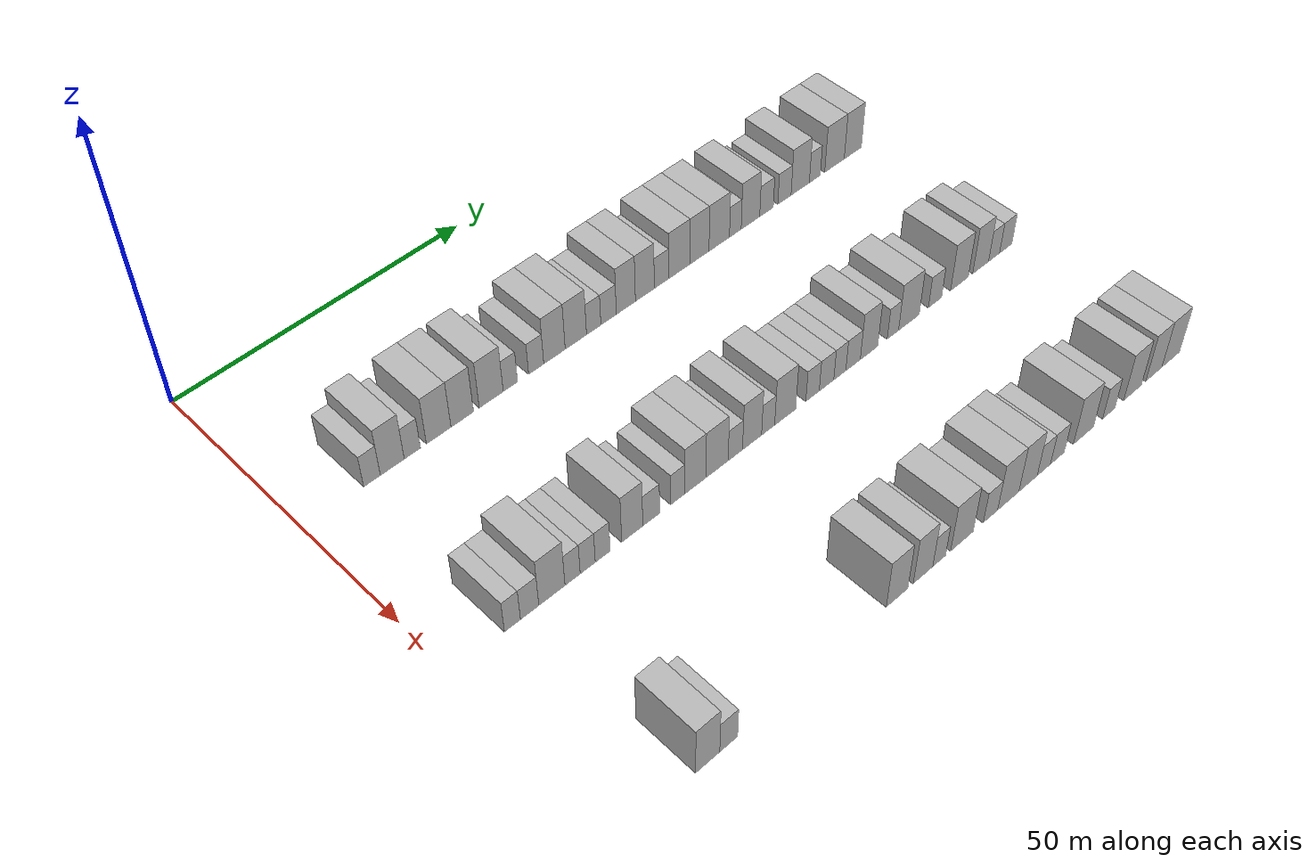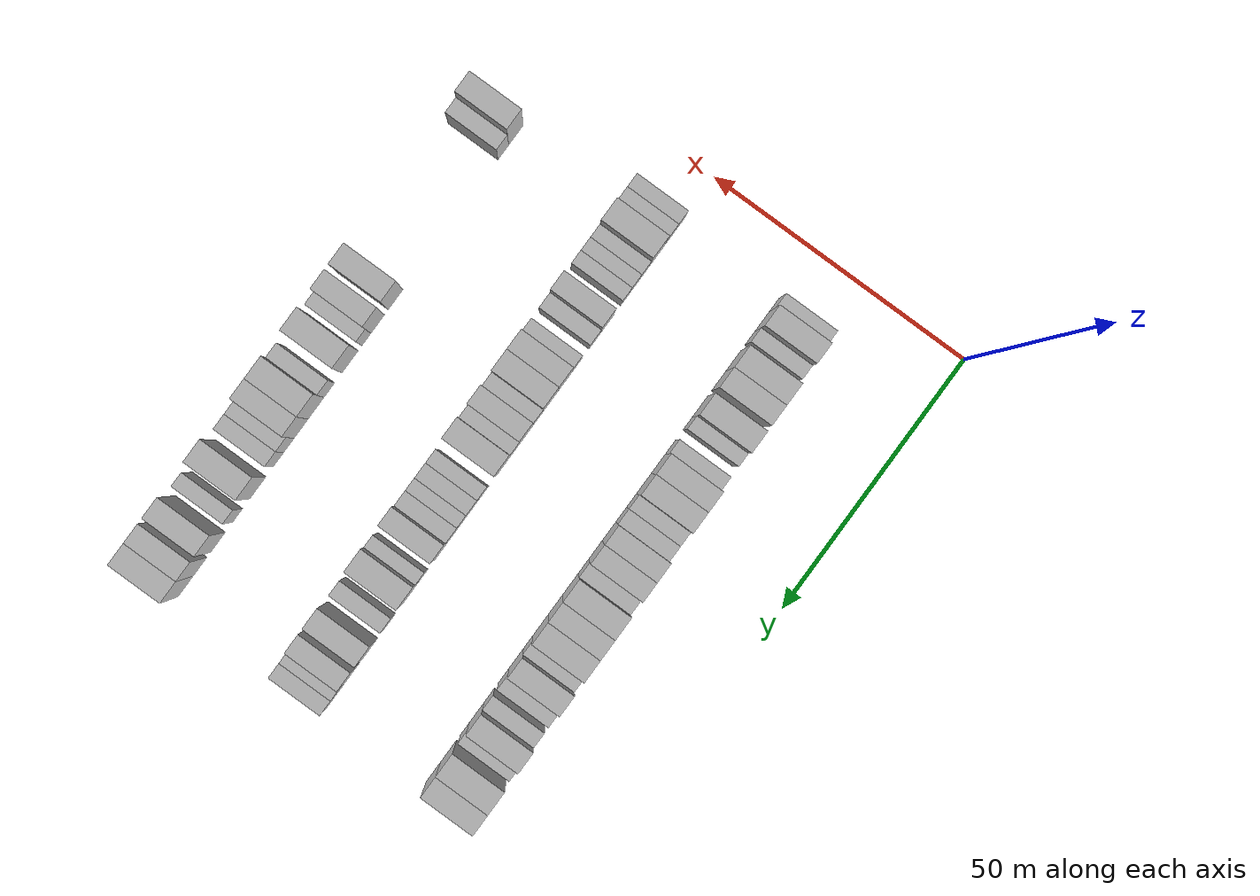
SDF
<sdf version="1.6">
 <world name="default">
  <model name="building_69">
   <static>1</static>
   <pose>25.0000 11.1300 0 0.000000 0.000000 0.000000</pose>
   <link name="link">
    <pose>0 0 3.00 0 0 0</pose>
    <collision name="collision"><geometry><box><size>10.0000 2.7293 6.0000</size></box></geometry></collision>
    <visual name="visual">
     <cast_shadows>0</cast_shadows>
     <geometry><box><size>10.0000 2.7293 6.0000</size></box></geometry>
     <material>
      <script>
       <uri>model://HANNAS_wall/materials/scripts</uri>
       <uri>model://HANNAS_wall/materials/textures</uri>
       <name>vrc/HANNAS_wall</name>
      </script>
     </material>
    </visual>
   </link>
  </model>
  <model name="building_70">
   <static>1</static>
   <pose>25.0000 14.4818 0 0.000000 0.000000 0.000000</pose>
   <link name="link">
    <pose>0 0 4.50 0 0 0</pose>
    <collision name="collision"><geometry><box><size>10.0000 3.9744 9.0000</size></box></geometry></collision>
    <visual name="visual">
     <cast_shadows>0</cast_shadows>
     <geometry><box><size>10.0000 3.9744 9.0000</size></box></geometry>
     <material>
      <script>
       <uri>model://HANNAS_wall/materials/scripts</uri>
       <uri>model://HANNAS_wall/materials/textures</uri>
       <name>vrc/HANNAS_wall</name>
      </script>
     </material>
    </visual>
   </link>
  </model>
  <model name="building_71">
   <static>1</static>
   <pose>25.0000 17.8340 0 0.000000 0.000000 0.000000</pose>
   <link name="link">
    <pose>0 0 3.00 0 0 0</pose>
    <collision name="collision"><geometry><box><size>10.0000 2.7299 6.0000</size></box></geometry></collision>
    <visual name="visual">
     <cast_shadows>0</cast_shadows>
     <geometry><box><size>10.0000 2.7299 6.0000</size></box></geometry>
     <material>
      <script>
       <uri>model://HANNAS_wall/materials/scripts</uri>
       <uri>model://HANNAS_wall/materials/textures</uri>
       <name>vrc/HANNAS_wall</name>
      </script>
     </material>
    </visual>
   </link>
  </model>
  <model name="building_72">
   <static>1</static>
   <pose>25.0000 22.2994 0 0.000000 0.000000 0.000000</pose>
   <link name="link">
    <pose>0 0 4.50 0 0 0</pose>
    <collision name="collision"><geometry><box><size>10.0000 4.2010 9.0000</size></box></geometry></collision>
    <visual name="visual">
     <cast_shadows>0</cast_shadows>
     <geometry><box><size>10.0000 4.2010 9.0000</size></box></geometry>
     <material>
      <script>
       <uri>model://HANNAS_wall/materials/scripts</uri>
       <uri>model://HANNAS_wall/materials/textures</uri>
       <name>vrc/HANNAS_wall</name>
      </script>
     </material>
    </visual>
   </link>
  </model>
  <model name="building_73">
   <static>1</static>
   <pose>25.0000 26.3598 0 0.000000 0.000000 0.000000</pose>
   <link name="link">
    <pose>0 0 4.50 0 0 0</pose>
    <collision name="collision"><geometry><box><size>10.0000 3.9196 9.0000</size></box></geometry></collision>
    <visual name="visual">
     <cast_shadows>0</cast_shadows>
     <geometry><box><size>10.0000 3.9196 9.0000</size></box></geometry>
     <material>
      <script>
       <uri>model://HANNAS_wall/materials/scripts</uri>
       <uri>model://HANNAS_wall/materials/textures</uri>
       <name>vrc/HANNAS_wall</name>
      </script>
     </material>
    </visual>
   </link>
  </model>
  <model name="building_74">
   <static>1</static>
   <pose>25.0000 31.4423 0 0.000000 0.000000 0.000000</pose>
   <link name="link">
    <pose>0 0 4.50 0 0 0</pose>
    <collision name="collision"><geometry><box><size>10.0000 4.2455 9.0000</size></box></geometry></collision>
    <visual name="visual">
     <cast_shadows>0</cast_shadows>
     <geometry><box><size>10.0000 4.2455 9.0000</size></box></geometry>
     <material>
      <script>
       <uri>model://HANNAS_wall/materials/scripts</uri>
       <uri>model://HANNAS_wall/materials/textures</uri>
       <name>vrc/HANNAS_wall</name>
      </script>
     </material>
    </visual>
   </link>
  </model>
  <model name="building_75">
   <static>1</static>
   <pose>25.0000 34.8534 0 0.000000 0.000000 0.000000</pose>
   <link name="link">
    <pose>0 0 3.00 0 0 0</pose>
    <collision name="collision"><geometry><box><size>10.0000 2.5768 6.0000</size></box></geometry></collision>
    <visual name="visual">
     <cast_shadows>0</cast_shadows>
     <geometry><box><size>10.0000 2.5768 6.0000</size></box></geometry>
     <material>
      <script>
       <uri>model://HANNAS_wall/materials/scripts</uri>
       <uri>model://HANNAS_wall/materials/textures</uri>
       <name>vrc/HANNAS_wall</name>
      </script>
     </material>
    </visual>
   </link>
  </model>
  <model name="building_76">
   <static>1</static>
   <pose>25.0000 39.5230 0 0.000000 0.000000 0.000000</pose>
   <link name="link">
    <pose>0 0 3.00 0 0 0</pose>
    <collision name="collision"><geometry><box><size>10.0000 2.7624 6.0000</size></box></geometry></collision>
    <visual name="visual">
     <cast_shadows>0</cast_shadows>
     <geometry><box><size>10.0000 2.7624 6.0000</size></box></geometry>
     <material>
      <script>
       <uri>model://HANNAS_wall/materials/scripts</uri>
       <uri>model://HANNAS_wall/materials/textures</uri>
       <name>vrc/HANNAS_wall</name>
      </script>
     </material>
    </visual>
   </link>
  </model>
  <model name="building_77">
   <static>1</static>
   <pose>25.0000 42.8875 0 0.000000 0.000000 0.000000</pose>
   <link name="link">
    <pose>0 0 4.50 0 0 0</pose>
    <collision name="collision"><geometry><box><size>10.0000 3.9665 9.0000</size></box></geometry></collision>
    <visual name="visual">
     <cast_shadows>0</cast_shadows>
     <geometry><box><size>10.0000 3.9665 9.0000</size></box></geometry>
     <material>
      <script>
       <uri>model://HANNAS_wall/materials/scripts</uri>
       <uri>model://HANNAS_wall/materials/textures</uri>
       <name>vrc/HANNAS_wall</name>
      </script>
     </material>
    </visual>
   </link>
  </model>
  <model name="building_78">
   <static>1</static>
   <pose>25.0000 46.8766 0 0.000000 0.000000 0.000000</pose>
   <link name="link">
    <pose>0 0 4.50 0 0 0</pose>
    <collision name="collision"><geometry><box><size>10.0000 4.0118 9.0000</size></box></geometry></collision>
    <visual name="visual">
     <cast_shadows>0</cast_shadows>
     <geometry><box><size>10.0000 4.0118 9.0000</size></box></geometry>
     <material>
      <script>
       <uri>model://HANNAS_wall/materials/scripts</uri>
       <uri>model://HANNAS_wall/materials/textures</uri>
       <name>vrc/HANNAS_wall</name>
      </script>
     </material>
    </visual>
   </link>
  </model>
  <model name="building_79">
   <static>1</static>
   <pose>25.0000 50.2475 0 0.000000 0.000000 0.000000</pose>
   <link name="link">
    <pose>0 0 3.00 0 0 0</pose>
    <collision name="collision"><geometry><box><size>10.0000 2.7299 6.0000</size></box></geometry></collision>
    <visual name="visual">
     <cast_shadows>0</cast_shadows>
     <geometry><box><size>10.0000 2.7299 6.0000</size></box></geometry>
     <material>
      <script>
       <uri>model://HANNAS_wall/materials/scripts</uri>
       <uri>model://HANNAS_wall/materials/textures</uri>
       <name>vrc/HANNAS_wall</name>
      </script>
     </material>
    </visual>
   </link>
  </model>
  <model name="building_80">
   <static>1</static>
   <pose>25.0000 53.1015 0 0.000000 0.000000 0.000000</pose>
   <link name="link">
    <pose>0 0 3.00 0 0 0</pose>
    <collision name="collision"><geometry><box><size>10.0000 2.9782 6.0000</size></box></geometry></collision>
    <visual name="visual">
     <cast_shadows>0</cast_shadows>
     <geometry><box><size>10.0000 2.9782 6.0000</size></box></geometry>
     <material>
      <script>
       <uri>model://HANNAS_wall/materials/scripts</uri>
       <uri>model://HANNAS_wall/materials/textures</uri>
       <name>vrc/HANNAS_wall</name>
      </script>
     </material>
    </visual>
   </link>
  </model>
  <model name="building_81">
   <static>1</static>
   <pose>25.0000 56.4469 0 0.000000 0.000000 0.000000</pose>
   <link name="link">
    <pose>0 0 4.50 0 0 0</pose>
    <collision name="collision"><geometry><box><size>10.0000 3.7125 9.0000</size></box></geometry></collision>
    <visual name="visual">
     <cast_shadows>0</cast_shadows>
     <geometry><box><size>10.0000 3.7125 9.0000</size></box></geometry>
     <material>
      <script>
       <uri>model://HANNAS_wall/materials/scripts</uri>
       <uri>model://HANNAS_wall/materials/textures</uri>
       <name>vrc/HANNAS_wall</name>
      </script>
     </material>
    </visual>
   </link>
  </model>
  <model name="building_82">
   <static>1</static>
   <pose>25.0000 60.1686 0 0.000000 0.000000 0.000000</pose>
   <link name="link">
    <pose>0 0 4.50 0 0 0</pose>
    <collision name="collision"><geometry><box><size>10.0000 3.7308 9.0000</size></box></geometry></collision>
    <visual name="visual">
     <cast_shadows>0</cast_shadows>
     <geometry><box><size>10.0000 3.7308 9.0000</size></box></geometry>
     <material>
      <script>
       <uri>model://HANNAS_wall/materials/scripts</uri>
       <uri>model://HANNAS_wall/materials/textures</uri>
       <name>vrc/HANNAS_wall</name>
      </script>
     </material>
    </visual>
   </link>
  </model>
  <model name="building_83">
   <static>1</static>
   <pose>25.0000 63.4710 0 0.000000 0.000000 0.000000</pose>
   <link name="link">
    <pose>0 0 3.00 0 0 0</pose>
    <collision name="collision"><geometry><box><size>10.0000 2.8741 6.0000</size></box></geometry></collision>
    <visual name="visual">
     <cast_shadows>0</cast_shadows>
     <geometry><box><size>10.0000 2.8741 6.0000</size></box></geometry>
     <material>
      <script>
       <uri>model://HANNAS_wall/materials/scripts</uri>
       <uri>model://HANNAS_wall/materials/textures</uri>
       <name>vrc/HANNAS_wall</name>
      </script>
     </material>
    </visual>
   </link>
  </model>
  <model name="building_84">
   <static>1</static>
   <pose>25.0000 67.0806 0 0.000000 0.000000 0.000000</pose>
   <link name="link">
    <pose>0 0 4.50 0 0 0</pose>
    <collision name="collision"><geometry><box><size>10.0000 4.3451 9.0000</size></box></geometry></collision>
    <visual name="visual">
     <cast_shadows>0</cast_shadows>
     <geometry><box><size>10.0000 4.3451 9.0000</size></box></geometry>
     <material>
      <script>
       <uri>model://HANNAS_wall/materials/scripts</uri>
       <uri>model://HANNAS_wall/materials/textures</uri>
       <name>vrc/HANNAS_wall</name>
      </script>
     </material>
    </visual>
   </link>
  </model>
  <model name="building_85">
   <static>1</static>
   <pose>25.0000 71.1845 0 0.000000 0.000000 0.000000</pose>
   <link name="link">
    <pose>0 0 4.50 0 0 0</pose>
    <collision name="collision"><geometry><box><size>10.0000 3.8626 9.0000</size></box></geometry></collision>
    <visual name="visual">
     <cast_shadows>0</cast_shadows>
     <geometry><box><size>10.0000 3.8626 9.0000</size></box></geometry>
     <material>
      <script>
       <uri>model://HANNAS_wall/materials/scripts</uri>
       <uri>model://HANNAS_wall/materials/textures</uri>
       <name>vrc/HANNAS_wall</name>
      </script>
     </material>
    </visual>
   </link>
  </model>
  <model name="building_86">
   <static>1</static>
   <pose>25.0000 75.2449 0 0.000000 0.000000 0.000000</pose>
   <link name="link">
    <pose>0 0 4.50 0 0 0</pose>
    <collision name="collision"><geometry><box><size>10.0000 4.2584 9.0000</size></box></geometry></collision>
    <visual name="visual">
     <cast_shadows>0</cast_shadows>
     <geometry><box><size>10.0000 4.2584 9.0000</size></box></geometry>
     <material>
      <script>
       <uri>model://HANNAS_wall/materials/scripts</uri>
       <uri>model://HANNAS_wall/materials/textures</uri>
       <name>vrc/HANNAS_wall</name>
      </script>
     </material>
    </visual>
   </link>
  </model>
  <model name="building_87">
   <static>1</static>
   <pose>25.0000 78.6102 0 0.000000 0.000000 0.000000</pose>
   <link name="link">
    <pose>0 0 3.00 0 0 0</pose>
    <collision name="collision"><geometry><box><size>10.0000 2.4722 6.0000</size></box></geometry></collision>
    <visual name="visual">
     <cast_shadows>0</cast_shadows>
     <geometry><box><size>10.0000 2.4722 6.0000</size></box></geometry>
     <material>
      <script>
       <uri>model://HANNAS_wall/materials/scripts</uri>
       <uri>model://HANNAS_wall/materials/textures</uri>
       <name>vrc/HANNAS_wall</name>
      </script>
     </material>
    </visual>
   </link>
  </model>
  <model name="building_88">
   <static>1</static>
   <pose>25.0000 81.8206 0 0.000000 0.000000 0.000000</pose>
   <link name="link">
    <pose>0 0 4.50 0 0 0</pose>
    <collision name="collision"><geometry><box><size>10.0000 3.9486 9.0000</size></box></geometry></collision>
    <visual name="visual">
     <cast_shadows>0</cast_shadows>
     <geometry><box><size>10.0000 3.9486 9.0000</size></box></geometry>
     <material>
      <script>
       <uri>model://HANNAS_wall/materials/scripts</uri>
       <uri>model://HANNAS_wall/materials/textures</uri>
       <name>vrc/HANNAS_wall</name>
      </script>
     </material>
    </visual>
   </link>
  </model>
  <model name="building_89">
   <static>1</static>
   <pose>25.0000 85.2588 0 0.000000 0.000000 0.000000</pose>
   <link name="link">
    <pose>0 0 3.00 0 0 0</pose>
    <collision name="collision"><geometry><box><size>10.0000 2.9277 6.0000</size></box></geometry></collision>
    <visual name="visual">
     <cast_shadows>0</cast_shadows>
     <geometry><box><size>10.0000 2.9277 6.0000</size></box></geometry>
     <material>
      <script>
       <uri>model://HANNAS_wall/materials/scripts</uri>
       <uri>model://HANNAS_wall/materials/textures</uri>
       <name>vrc/HANNAS_wall</name>
      </script>
     </material>
    </visual>
   </link>
  </model>
  <model name="building_90">
   <static>1</static>
   <pose>25.0000 89.1623 0 0.000000 0.000000 0.000000</pose>
   <link name="link">
    <pose>0 0 3.00 0 0 0</pose>
    <collision name="collision"><geometry><box><size>10.0000 2.8794 6.0000</size></box></geometry></collision>
    <visual name="visual">
     <cast_shadows>0</cast_shadows>
     <geometry><box><size>10.0000 2.8794 6.0000</size></box></geometry>
     <material>
      <script>
       <uri>model://HANNAS_wall/materials/scripts</uri>
       <uri>model://HANNAS_wall/materials/textures</uri>
       <name>vrc/HANNAS_wall</name>
      </script>
     </material>
    </visual>
   </link>
  </model>
  <model name="building_91">
   <static>1</static>
   <pose>25.0000 92.6256 0 0.000000 0.000000 0.000000</pose>
   <link name="link">
    <pose>0 0 4.50 0 0 0</pose>
    <collision name="collision"><geometry><box><size>10.0000 4.0471 9.0000</size></box></geometry></collision>
    <visual name="visual">
     <cast_shadows>0</cast_shadows>
     <geometry><box><size>10.0000 4.0471 9.0000</size></box></geometry>
     <material>
      <script>
       <uri>model://HANNAS_wall/materials/scripts</uri>
       <uri>model://HANNAS_wall/materials/textures</uri>
       <name>vrc/HANNAS_wall</name>
      </script>
     </material>
    </visual>
   </link>
  </model>
  <model name="building_92">
   <static>1</static>
   <pose>25.0000 95.8721 0 0.000000 0.000000 0.000000</pose>
   <link name="link">
    <pose>0 0 3.00 0 0 0</pose>
    <collision name="collision"><geometry><box><size>10.0000 2.4459 6.0000</size></box></geometry></collision>
    <visual name="visual">
     <cast_shadows>0</cast_shadows>
     <geometry><box><size>10.0000 2.4459 6.0000</size></box></geometry>
     <material>
      <script>
       <uri>model://HANNAS_wall/materials/scripts</uri>
       <uri>model://HANNAS_wall/materials/textures</uri>
       <name>vrc/HANNAS_wall</name>
      </script>
     </material>
    </visual>
   </link>
  </model>
  <model name="building_93">
   <static>1</static>
   <pose>25.0000 100.3099 0 0.000000 0.000000 0.000000</pose>
   <link name="link">
    <pose>0 0 4.50 0 0 0</pose>
    <collision name="collision"><geometry><box><size>10.0000 4.4297 9.0000</size></box></geometry></collision>
    <visual name="visual">
     <cast_shadows>0</cast_shadows>
     <geometry><box><size>10.0000 4.4297 9.0000</size></box></geometry>
     <material>
      <script>
       <uri>model://HANNAS_wall/materials/scripts</uri>
       <uri>model://HANNAS_wall/materials/textures</uri>
       <name>vrc/HANNAS_wall</name>
      </script>
     </material>
    </visual>
   </link>
  </model>
  <model name="building_94">
   <static>1</static>
   <pose>25.0000 104.4895 0 0.000000 0.000000 0.000000</pose>
   <link name="link">
    <pose>0 0 4.50 0 0 0</pose>
    <collision name="collision"><geometry><box><size>10.0000 3.9295 9.0000</size></box></geometry></collision>
    <visual name="visual">
     <cast_shadows>0</cast_shadows>
     <geometry><box><size>10.0000 3.9295 9.0000</size></box></geometry>
     <material>
      <script>
       <uri>model://HANNAS_wall/materials/scripts</uri>
       <uri>model://HANNAS_wall/materials/textures</uri>
       <name>vrc/HANNAS_wall</name>
      </script>
     </material>
    </visual>
   </link>
  </model>
  <model name="building_207">
   <static>1</static>
   <pose>55.0000 9.6672 0 0.000000 0.000000 0.000000</pose>
   <link name="link">
    <pose>0 0 3.00 0 0 0</pose>
    <collision name="collision"><geometry><box><size>10.0000 2.5757 6.0000</size></box></geometry></collision>
    <visual name="visual">
     <cast_shadows>0</cast_shadows>
     <geometry><box><size>10.0000 2.5757 6.0000</size></box></geometry>
     <material>
      <script>
       <uri>model://HANNAS_wall/materials/scripts</uri>
       <uri>model://HANNAS_wall/materials/textures</uri>
       <name>vrc/HANNAS_wall</name>
      </script>
     </material>
    </visual>
   </link>
  </model>
  <model name="building_208">
   <static>1</static>
   <pose>55.0000 12.4416 0 0.000000 0.000000 0.000000</pose>
   <link name="link">
    <pose>0 0 3.00 0 0 0</pose>
    <collision name="collision"><geometry><box><size>10.0000 2.9729 6.0000</size></box></geometry></collision>
    <visual name="visual">
     <cast_shadows>0</cast_shadows>
     <geometry><box><size>10.0000 2.9729 6.0000</size></box></geometry>
     <material>
      <script>
       <uri>model://HANNAS_wall/materials/scripts</uri>
       <uri>model://HANNAS_wall/materials/textures</uri>
       <name>vrc/HANNAS_wall</name>
      </script>
     </material>
    </visual>
   </link>
  </model>
  <model name="building_209">
   <static>1</static>
   <pose>55.0000 16.0848 0 0.000000 0.000000 0.000000</pose>
   <link name="link">
    <pose>0 0 4.50 0 0 0</pose>
    <collision name="collision"><geometry><box><size>10.0000 4.3135 9.0000</size></box></geometry></collision>
    <visual name="visual">
     <cast_shadows>0</cast_shadows>
     <geometry><box><size>10.0000 4.3135 9.0000</size></box></geometry>
     <material>
      <script>
       <uri>model://HANNAS_wall/materials/scripts</uri>
       <uri>model://HANNAS_wall/materials/textures</uri>
       <name>vrc/HANNAS_wall</name>
      </script>
     </material>
    </visual>
   </link>
  </model>
  <model name="building_210">
   <static>1</static>
   <pose>55.0000 19.5131 0 0.000000 0.000000 0.000000</pose>
   <link name="link">
    <pose>0 0 3.00 0 0 0</pose>
    <collision name="collision"><geometry><box><size>10.0000 2.5431 6.0000</size></box></geometry></collision>
    <visual name="visual">
     <cast_shadows>0</cast_shadows>
     <geometry><box><size>10.0000 2.5431 6.0000</size></box></geometry>
     <material>
      <script>
       <uri>model://HANNAS_wall/materials/scripts</uri>
       <uri>model://HANNAS_wall/materials/textures</uri>
       <name>vrc/HANNAS_wall</name>
      </script>
     </material>
    </visual>
   </link>
  </model>
  <model name="building_211">
   <static>1</static>
   <pose>55.0000 22.0585 0 0.000000 0.000000 0.000000</pose>
   <link name="link">
    <pose>0 0 3.00 0 0 0</pose>
    <collision name="collision"><geometry><box><size>10.0000 2.5477 6.0000</size></box></geometry></collision>
    <visual name="visual">
     <cast_shadows>0</cast_shadows>
     <geometry><box><size>10.0000 2.5477 6.0000</size></box></geometry>
     <material>
      <script>
       <uri>model://HANNAS_wall/materials/scripts</uri>
       <uri>model://HANNAS_wall/materials/textures</uri>
       <name>vrc/HANNAS_wall</name>
      </script>
     </material>
    </visual>
   </link>
  </model>
  <model name="building_212">
   <static>1</static>
   <pose>55.0000 24.5988 0 0.000000 0.000000 0.000000</pose>
   <link name="link">
    <pose>0 0 3.00 0 0 0</pose>
    <collision name="collision"><geometry><box><size>10.0000 2.5330 6.0000</size></box></geometry></collision>
    <visual name="visual">
     <cast_shadows>0</cast_shadows>
     <geometry><box><size>10.0000 2.5330 6.0000</size></box></geometry>
     <material>
      <script>
       <uri>model://HANNAS_wall/materials/scripts</uri>
       <uri>model://HANNAS_wall/materials/textures</uri>
       <name>vrc/HANNAS_wall</name>
      </script>
     </material>
    </visual>
   </link>
  </model>
  <model name="building_213">
   <static>1</static>
   <pose>55.0000 29.7055 0 0.000000 0.000000 0.000000</pose>
   <link name="link">
    <pose>0 0 4.50 0 0 0</pose>
    <collision name="collision"><geometry><box><size>10.0000 3.6804 9.0000</size></box></geometry></collision>
    <visual name="visual">
     <cast_shadows>0</cast_shadows>
     <geometry><box><size>10.0000 3.6804 9.0000</size></box></geometry>
     <material>
      <script>
       <uri>model://HANNAS_wall/materials/scripts</uri>
       <uri>model://HANNAS_wall/materials/textures</uri>
       <name>vrc/HANNAS_wall</name>
      </script>
     </material>
    </visual>
   </link>
  </model>
  <model name="building_214">
   <static>1</static>
   <pose>55.0000 33.0315 0 0.000000 0.000000 0.000000</pose>
   <link name="link">
    <pose>0 0 3.00 0 0 0</pose>
    <collision name="collision"><geometry><box><size>10.0000 2.9715 6.0000</size></box></geometry></collision>
    <visual name="visual">
     <cast_shadows>0</cast_shadows>
     <geometry><box><size>10.0000 2.9715 6.0000</size></box></geometry>
     <material>
      <script>
       <uri>model://HANNAS_wall/materials/scripts</uri>
       <uri>model://HANNAS_wall/materials/textures</uri>
       <name>vrc/HANNAS_wall</name>
      </script>
     </material>
    </visual>
   </link>
  </model>
  <model name="building_215">
   <static>1</static>
   <pose>55.0000 37.7977 0 0.000000 0.000000 0.000000</pose>
   <link name="link">
    <pose>0 0 3.00 0 0 0</pose>
    <collision name="collision"><geometry><box><size>10.0000 2.5610 6.0000</size></box></geometry></collision>
    <visual name="visual">
     <cast_shadows>0</cast_shadows>
     <geometry><box><size>10.0000 2.5610 6.0000</size></box></geometry>
     <material>
      <script>
       <uri>model://HANNAS_wall/materials/scripts</uri>
       <uri>model://HANNAS_wall/materials/textures</uri>
       <name>vrc/HANNAS_wall</name>
      </script>
     </material>
    </visual>
   </link>
  </model>
  <model name="building_216">
   <static>1</static>
   <pose>55.0000 40.9803 0 0.000000 0.000000 0.000000</pose>
   <link name="link">
    <pose>0 0 4.50 0 0 0</pose>
    <collision name="collision"><geometry><box><size>10.0000 3.8041 9.0000</size></box></geometry></collision>
    <visual name="visual">
     <cast_shadows>0</cast_shadows>
     <geometry><box><size>10.0000 3.8041 9.0000</size></box></geometry>
     <material>
      <script>
       <uri>model://HANNAS_wall/materials/scripts</uri>
       <uri>model://HANNAS_wall/materials/textures</uri>
       <name>vrc/HANNAS_wall</name>
      </script>
     </material>
    </visual>
   </link>
  </model>
  <model name="building_217">
   <static>1</static>
   <pose>55.0000 44.9478 0 0.000000 0.000000 0.000000</pose>
   <link name="link">
    <pose>0 0 4.50 0 0 0</pose>
    <collision name="collision"><geometry><box><size>10.0000 4.1309 9.0000</size></box></geometry></collision>
    <visual name="visual">
     <cast_shadows>0</cast_shadows>
     <geometry><box><size>10.0000 4.1309 9.0000</size></box></geometry>
     <material>
      <script>
       <uri>model://HANNAS_wall/materials/scripts</uri>
       <uri>model://HANNAS_wall/materials/textures</uri>
       <name>vrc/HANNAS_wall</name>
      </script>
     </material>
    </visual>
   </link>
  </model>
  <model name="building_218">
   <static>1</static>
   <pose>55.0000 48.3630 0 0.000000 0.000000 0.000000</pose>
   <link name="link">
    <pose>0 0 3.00 0 0 0</pose>
    <collision name="collision"><geometry><box><size>10.0000 2.6995 6.0000</size></box></geometry></collision>
    <visual name="visual">
     <cast_shadows>0</cast_shadows>
     <geometry><box><size>10.0000 2.6995 6.0000</size></box></geometry>
     <material>
      <script>
       <uri>model://HANNAS_wall/materials/scripts</uri>
       <uri>model://HANNAS_wall/materials/textures</uri>
       <name>vrc/HANNAS_wall</name>
      </script>
     </material>
    </visual>
   </link>
  </model>
  <model name="building_219">
   <static>1</static>
   <pose>55.0000 51.5292 0 0.000000 0.000000 0.000000</pose>
   <link name="link">
    <pose>0 0 4.50 0 0 0</pose>
    <collision name="collision"><geometry><box><size>10.0000 3.6328 9.0000</size></box></geometry></collision>
    <visual name="visual">
     <cast_shadows>0</cast_shadows>
     <geometry><box><size>10.0000 3.6328 9.0000</size></box></geometry>
     <material>
      <script>
       <uri>model://HANNAS_wall/materials/scripts</uri>
       <uri>model://HANNAS_wall/materials/textures</uri>
       <name>vrc/HANNAS_wall</name>
      </script>
     </material>
    </visual>
   </link>
  </model>
  <model name="building_220">
   <static>1</static>
   <pose>55.0000 54.6069 0 0.000000 0.000000 0.000000</pose>
   <link name="link">
    <pose>0 0 3.00 0 0 0</pose>
    <collision name="collision"><geometry><box><size>10.0000 2.5227 6.0000</size></box></geometry></collision>
    <visual name="visual">
     <cast_shadows>0</cast_shadows>
     <geometry><box><size>10.0000 2.5227 6.0000</size></box></geometry>
     <material>
      <script>
       <uri>model://HANNAS_wall/materials/scripts</uri>
       <uri>model://HANNAS_wall/materials/textures</uri>
       <name>vrc/HANNAS_wall</name>
      </script>
     </material>
    </visual>
   </link>
  </model>
  <model name="building_221">
   <static>1</static>
   <pose>55.0000 57.9199 0 0.000000 0.000000 0.000000</pose>
   <link name="link">
    <pose>0 0 4.50 0 0 0</pose>
    <collision name="collision"><geometry><box><size>10.0000 4.1034 9.0000</size></box></geometry></collision>
    <visual name="visual">
     <cast_shadows>0</cast_shadows>
     <geometry><box><size>10.0000 4.1034 9.0000</size></box></geometry>
     <material>
      <script>
       <uri>model://HANNAS_wall/materials/scripts</uri>
       <uri>model://HANNAS_wall/materials/textures</uri>
       <name>vrc/HANNAS_wall</name>
      </script>
     </material>
    </visual>
   </link>
  </model>
  <model name="building_222">
   <static>1</static>
   <pose>55.0000 63.3047 0 0.000000 0.000000 0.000000</pose>
   <link name="link">
    <pose>0 0 3.00 0 0 0</pose>
    <collision name="collision"><geometry><box><size>10.0000 2.6662 6.0000</size></box></geometry></collision>
    <visual name="visual">
     <cast_shadows>0</cast_shadows>
     <geometry><box><size>10.0000 2.6662 6.0000</size></box></geometry>
     <material>
      <script>
       <uri>model://HANNAS_wall/materials/scripts</uri>
       <uri>model://HANNAS_wall/materials/textures</uri>
       <name>vrc/HANNAS_wall</name>
      </script>
     </material>
    </visual>
   </link>
  </model>
  <model name="building_223">
   <static>1</static>
   <pose>55.0000 66.1019 0 0.000000 0.000000 0.000000</pose>
   <link name="link">
    <pose>0 0 3.00 0 0 0</pose>
    <collision name="collision"><geometry><box><size>10.0000 2.9282 6.0000</size></box></geometry></collision>
    <visual name="visual">
     <cast_shadows>0</cast_shadows>
     <geometry><box><size>10.0000 2.9282 6.0000</size></box></geometry>
     <material>
      <script>
       <uri>model://HANNAS_wall/materials/scripts</uri>
       <uri>model://HANNAS_wall/materials/textures</uri>
       <name>vrc/HANNAS_wall</name>
      </script>
     </material>
    </visual>
   </link>
  </model>
  <model name="building_224">
   <static>1</static>
   <pose>55.0000 68.7865 0 0.000000 0.000000 0.000000</pose>
   <link name="link">
    <pose>0 0 3.00 0 0 0</pose>
    <collision name="collision"><geometry><box><size>10.0000 2.4410 6.0000</size></box></geometry></collision>
    <visual name="visual">
     <cast_shadows>0</cast_shadows>
     <geometry><box><size>10.0000 2.4410 6.0000</size></box></geometry>
     <material>
      <script>
       <uri>model://HANNAS_wall/materials/scripts</uri>
       <uri>model://HANNAS_wall/materials/textures</uri>
       <name>vrc/HANNAS_wall</name>
      </script>
     </material>
    </visual>
   </link>
  </model>
  <model name="building_225">
   <static>1</static>
   <pose>55.0000 71.5010 0 0.000000 0.000000 0.000000</pose>
   <link name="link">
    <pose>0 0 3.00 0 0 0</pose>
    <collision name="collision"><geometry><box><size>10.0000 2.9880 6.0000</size></box></geometry></collision>
    <visual name="visual">
     <cast_shadows>0</cast_shadows>
     <geometry><box><size>10.0000 2.9880 6.0000</size></box></geometry>
     <material>
      <script>
       <uri>model://HANNAS_wall/materials/scripts</uri>
       <uri>model://HANNAS_wall/materials/textures</uri>
       <name>vrc/HANNAS_wall</name>
      </script>
     </material>
    </visual>
   </link>
  </model>
  <model name="building_226">
   <static>1</static>
   <pose>55.0000 74.8074 0 0.000000 0.000000 0.000000</pose>
   <link name="link">
    <pose>0 0 4.50 0 0 0</pose>
    <collision name="collision"><geometry><box><size>10.0000 3.6248 9.0000</size></box></geometry></collision>
    <visual name="visual">
     <cast_shadows>0</cast_shadows>
     <geometry><box><size>10.0000 3.6248 9.0000</size></box></geometry>
     <material>
      <script>
       <uri>model://HANNAS_wall/materials/scripts</uri>
       <uri>model://HANNAS_wall/materials/textures</uri>
       <name>vrc/HANNAS_wall</name>
      </script>
     </material>
    </visual>
   </link>
  </model>
  <model name="building_227">
   <static>1</static>
   <pose>55.0000 79.8282 0 0.000000 0.000000 0.000000</pose>
   <link name="link">
    <pose>0 0 3.00 0 0 0</pose>
    <collision name="collision"><geometry><box><size>10.0000 2.4167 6.0000</size></box></geometry></collision>
    <visual name="visual">
     <cast_shadows>0</cast_shadows>
     <geometry><box><size>10.0000 2.4167 6.0000</size></box></geometry>
     <material>
      <script>
       <uri>model://HANNAS_wall/materials/scripts</uri>
       <uri>model://HANNAS_wall/materials/textures</uri>
       <name>vrc/HANNAS_wall</name>
      </script>
     </material>
    </visual>
   </link>
  </model>
  <model name="building_228">
   <static>1</static>
   <pose>55.0000 83.2558 0 0.000000 0.000000 0.000000</pose>
   <link name="link">
    <pose>0 0 4.50 0 0 0</pose>
    <collision name="collision"><geometry><box><size>10.0000 4.4387 9.0000</size></box></geometry></collision>
    <visual name="visual">
     <cast_shadows>0</cast_shadows>
     <geometry><box><size>10.0000 4.4387 9.0000</size></box></geometry>
     <material>
      <script>
       <uri>model://HANNAS_wall/materials/scripts</uri>
       <uri>model://HANNAS_wall/materials/textures</uri>
       <name>vrc/HANNAS_wall</name>
      </script>
     </material>
    </visual>
   </link>
  </model>
  <model name="building_229">
   <static>1</static>
   <pose>55.0000 88.9210 0 0.000000 0.000000 0.000000</pose>
   <link name="link">
    <pose>0 0 3.00 0 0 0</pose>
    <collision name="collision"><geometry><box><size>10.0000 2.8916 6.0000</size></box></geometry></collision>
    <visual name="visual">
     <cast_shadows>0</cast_shadows>
     <geometry><box><size>10.0000 2.8916 6.0000</size></box></geometry>
     <material>
      <script>
       <uri>model://HANNAS_wall/materials/scripts</uri>
       <uri>model://HANNAS_wall/materials/textures</uri>
       <name>vrc/HANNAS_wall</name>
      </script>
     </material>
    </visual>
   </link>
  </model>
  <model name="building_230">
   <static>1</static>
   <pose>55.0000 94.3499 0 0.000000 0.000000 0.000000</pose>
   <link name="link">
    <pose>0 0 4.50 0 0 0</pose>
    <collision name="collision"><geometry><box><size>10.0000 3.9662 9.0000</size></box></geometry></collision>
    <visual name="visual">
     <cast_shadows>0</cast_shadows>
     <geometry><box><size>10.0000 3.9662 9.0000</size></box></geometry>
     <material>
      <script>
       <uri>model://HANNAS_wall/materials/scripts</uri>
       <uri>model://HANNAS_wall/materials/textures</uri>
       <name>vrc/HANNAS_wall</name>
      </script>
     </material>
    </visual>
   </link>
  </model>
  <model name="building_231">
   <static>1</static>
   <pose>55.0000 99.1384 0 0.000000 0.000000 0.000000</pose>
   <link name="link">
    <pose>0 0 4.50 0 0 0</pose>
    <collision name="collision"><geometry><box><size>10.0000 3.6108 9.0000</size></box></geometry></collision>
    <visual name="visual">
     <cast_shadows>0</cast_shadows>
     <geometry><box><size>10.0000 3.6108 9.0000</size></box></geometry>
     <material>
      <script>
       <uri>model://HANNAS_wall/materials/scripts</uri>
       <uri>model://HANNAS_wall/materials/textures</uri>
       <name>vrc/HANNAS_wall</name>
      </script>
     </material>
    </visual>
   </link>
  </model>
  <model name="building_232">
   <static>1</static>
   <pose>55.0000 102.2079 0 0.000000 0.000000 0.000000</pose>
   <link name="link">
    <pose>0 0 3.00 0 0 0</pose>
    <collision name="collision"><geometry><box><size>10.0000 2.5282 6.0000</size></box></geometry></collision>
    <visual name="visual">
     <cast_shadows>0</cast_shadows>
     <geometry><box><size>10.0000 2.5282 6.0000</size></box></geometry>
     <material>
      <script>
       <uri>model://HANNAS_wall/materials/scripts</uri>
       <uri>model://HANNAS_wall/materials/textures</uri>
       <name>vrc/HANNAS_wall</name>
      </script>
     </material>
    </visual>
   </link>
  </model>
  <model name="building_233">
   <static>1</static>
   <pose>55.0000 104.8976 0 0.000000 0.000000 0.000000</pose>
   <link name="link">
    <pose>0 0 3.00 0 0 0</pose>
    <collision name="collision"><geometry><box><size>10.0000 2.8511 6.0000</size></box></geometry></collision>
    <visual name="visual">
     <cast_shadows>0</cast_shadows>
     <geometry><box><size>10.0000 2.8511 6.0000</size></box></geometry>
     <material>
      <script>
       <uri>model://HANNAS_wall/materials/scripts</uri>
       <uri>model://HANNAS_wall/materials/textures</uri>
       <name>vrc/HANNAS_wall</name>
      </script>
     </material>
    </visual>
   </link>
  </model>
  <model name="building_351">
   <static>1</static>
   <pose>85.0000 13.5978 0 0.000000 0.000000 0.000000</pose>
   <link name="link">
    <pose>0 0 4.50 0 0 0</pose>
    <collision name="collision"><geometry><box><size>10.0000 3.9155 9.0000</size></box></geometry></collision>
    <visual name="visual">
     <cast_shadows>0</cast_shadows>
     <geometry><box><size>10.0000 3.9155 9.0000</size></box></geometry>
     <material>
      <script>
       <uri>model://HANNAS_wall/materials/scripts</uri>
       <uri>model://HANNAS_wall/materials/textures</uri>
       <name>vrc/HANNAS_wall</name>
      </script>
     </material>
    </visual>
   </link>
  </model>
  <model name="building_352">
   <static>1</static>
   <pose>85.0000 17.0208 0 0.000000 0.000000 0.000000</pose>
   <link name="link">
    <pose>0 0 3.00 0 0 0</pose>
    <collision name="collision"><geometry><box><size>10.0000 2.9305 6.0000</size></box></geometry></collision>
    <visual name="visual">
     <cast_shadows>0</cast_shadows>
     <geometry><box><size>10.0000 2.9305 6.0000</size></box></geometry>
     <material>
      <script>
       <uri>model://HANNAS_wall/materials/scripts</uri>
       <uri>model://HANNAS_wall/materials/textures</uri>
       <name>vrc/HANNAS_wall</name>
      </script>
     </material>
    </visual>
   </link>
  </model>
  <model name="building_353">
   <static>1</static>
   <pose>85.0000 46.5602 0 0.000000 0.000000 0.000000</pose>
   <link name="link">
    <pose>0 0 4.50 0 0 0</pose>
    <collision name="collision"><geometry><box><size>10.0000 4.0494 9.0000</size></box></geometry></collision>
    <visual name="visual">
     <cast_shadows>0</cast_shadows>
     <geometry><box><size>10.0000 4.0494 9.0000</size></box></geometry>
     <material>
      <script>
       <uri>model://HANNAS_wall/materials/scripts</uri>
       <uri>model://HANNAS_wall/materials/textures</uri>
       <name>vrc/HANNAS_wall</name>
      </script>
     </material>
    </visual>
   </link>
  </model>
  <model name="building_354">
   <static>1</static>
   <pose>85.0000 51.4535 0 0.000000 0.000000 0.000000</pose>
   <link name="link">
    <pose>0 0 4.50 0 0 0</pose>
    <collision name="collision"><geometry><box><size>10.0000 3.7372 9.0000</size></box></geometry></collision>
    <visual name="visual">
     <cast_shadows>0</cast_shadows>
     <geometry><box><size>10.0000 3.7372 9.0000</size></box></geometry>
     <material>
      <script>
       <uri>model://HANNAS_wall/materials/scripts</uri>
       <uri>model://HANNAS_wall/materials/textures</uri>
       <name>vrc/HANNAS_wall</name>
      </script>
     </material>
    </visual>
   </link>
  </model>
  <model name="building_355">
   <static>1</static>
   <pose>85.0000 54.5587 0 0.000000 0.000000 0.000000</pose>
   <link name="link">
    <pose>0 0 3.00 0 0 0</pose>
    <collision name="collision"><geometry><box><size>10.0000 2.4732 6.0000</size></box></geometry></collision>
    <visual name="visual">
     <cast_shadows>0</cast_shadows>
     <geometry><box><size>10.0000 2.4732 6.0000</size></box></geometry>
     <material>
      <script>
       <uri>model://HANNAS_wall/materials/scripts</uri>
       <uri>model://HANNAS_wall/materials/textures</uri>
       <name>vrc/HANNAS_wall</name>
      </script>
     </material>
    </visual>
   </link>
  </model>
  <model name="building_356">
   <static>1</static>
   <pose>85.0000 59.0224 0 0.000000 0.000000 0.000000</pose>
   <link name="link">
    <pose>0 0 4.50 0 0 0</pose>
    <collision name="collision"><geometry><box><size>10.0000 4.4543 9.0000</size></box></geometry></collision>
    <visual name="visual">
     <cast_shadows>0</cast_shadows>
     <geometry><box><size>10.0000 4.4543 9.0000</size></box></geometry>
     <material>
      <script>
       <uri>model://HANNAS_wall/materials/scripts</uri>
       <uri>model://HANNAS_wall/materials/textures</uri>
       <name>vrc/HANNAS_wall</name>
      </script>
     </material>
    </visual>
   </link>
  </model>
  <model name="building_357">
   <static>1</static>
   <pose>85.0000 64.6962 0 0.000000 0.000000 0.000000</pose>
   <link name="link">
    <pose>0 0 3.00 0 0 0</pose>
    <collision name="collision"><geometry><box><size>10.0000 2.8933 6.0000</size></box></geometry></collision>
    <visual name="visual">
     <cast_shadows>0</cast_shadows>
     <geometry><box><size>10.0000 2.8933 6.0000</size></box></geometry>
     <material>
      <script>
       <uri>model://HANNAS_wall/materials/scripts</uri>
       <uri>model://HANNAS_wall/materials/textures</uri>
       <name>vrc/HANNAS_wall</name>
      </script>
     </material>
    </visual>
   </link>
  </model>
  <model name="building_358">
   <static>1</static>
   <pose>85.0000 68.3178 0 0.000000 0.000000 0.000000</pose>
   <link name="link">
    <pose>0 0 4.50 0 0 0</pose>
    <collision name="collision"><geometry><box><size>10.0000 4.3500 9.0000</size></box></geometry></collision>
    <visual name="visual">
     <cast_shadows>0</cast_shadows>
     <geometry><box><size>10.0000 4.3500 9.0000</size></box></geometry>
     <material>
      <script>
       <uri>model://HANNAS_wall/materials/scripts</uri>
       <uri>model://HANNAS_wall/materials/textures</uri>
       <name>vrc/HANNAS_wall</name>
      </script>
     </material>
    </visual>
   </link>
  </model>
  <model name="building_359">
   <static>1</static>
   <pose>85.0000 72.4034 0 0.000000 0.000000 0.000000</pose>
   <link name="link">
    <pose>0 0 4.50 0 0 0</pose>
    <collision name="collision"><geometry><box><size>10.0000 3.8213 9.0000</size></box></geometry></collision>
    <visual name="visual">
     <cast_shadows>0</cast_shadows>
     <geometry><box><size>10.0000 3.8213 9.0000</size></box></geometry>
     <material>
      <script>
       <uri>model://HANNAS_wall/materials/scripts</uri>
       <uri>model://HANNAS_wall/materials/textures</uri>
       <name>vrc/HANNAS_wall</name>
      </script>
     </material>
    </visual>
   </link>
  </model>
  <model name="building_360">
   <static>1</static>
   <pose>85.0000 75.7087 0 0.000000 0.000000 0.000000</pose>
   <link name="link">
    <pose>0 0 3.00 0 0 0</pose>
    <collision name="collision"><geometry><box><size>10.0000 2.7893 6.0000</size></box></geometry></collision>
    <visual name="visual">
     <cast_shadows>0</cast_shadows>
     <geometry><box><size>10.0000 2.7893 6.0000</size></box></geometry>
     <material>
      <script>
       <uri>model://HANNAS_wall/materials/scripts</uri>
       <uri>model://HANNAS_wall/materials/textures</uri>
       <name>vrc/HANNAS_wall</name>
      </script>
     </material>
    </visual>
   </link>
  </model>
  <model name="building_361">
   <static>1</static>
   <pose>85.0000 78.5684 0 0.000000 0.000000 0.000000</pose>
   <link name="link">
    <pose>0 0 3.00 0 0 0</pose>
    <collision name="collision"><geometry><box><size>10.0000 2.9301 6.0000</size></box></geometry></collision>
    <visual name="visual">
     <cast_shadows>0</cast_shadows>
     <geometry><box><size>10.0000 2.9301 6.0000</size></box></geometry>
     <material>
      <script>
       <uri>model://HANNAS_wall/materials/scripts</uri>
       <uri>model://HANNAS_wall/materials/textures</uri>
       <name>vrc/HANNAS_wall</name>
      </script>
     </material>
    </visual>
   </link>
  </model>
  <model name="building_362">
   <static>1</static>
   <pose>85.0000 84.2300 0 0.000000 0.000000 0.000000</pose>
   <link name="link">
    <pose>0 0 4.50 0 0 0</pose>
    <collision name="collision"><geometry><box><size>10.0000 4.3929 9.0000</size></box></geometry></collision>
    <visual name="visual">
     <cast_shadows>0</cast_shadows>
     <geometry><box><size>10.0000 4.3929 9.0000</size></box></geometry>
     <material>
      <script>
       <uri>model://HANNAS_wall/materials/scripts</uri>
       <uri>model://HANNAS_wall/materials/textures</uri>
       <name>vrc/HANNAS_wall</name>
      </script>
     </material>
    </visual>
   </link>
  </model>
  <model name="building_363">
   <static>1</static>
   <pose>85.0000 89.7848 0 0.000000 0.000000 0.000000</pose>
   <link name="link">
    <pose>0 0 3.00 0 0 0</pose>
    <collision name="collision"><geometry><box><size>10.0000 2.7167 6.0000</size></box></geometry></collision>
    <visual name="visual">
     <cast_shadows>0</cast_shadows>
     <geometry><box><size>10.0000 2.7167 6.0000</size></box></geometry>
     <material>
      <script>
       <uri>model://HANNAS_wall/materials/scripts</uri>
       <uri>model://HANNAS_wall/materials/textures</uri>
       <name>vrc/HANNAS_wall</name>
      </script>
     </material>
    </visual>
   </link>
  </model>
  <model name="building_364">
   <static>1</static>
   <pose>85.0000 95.1575 0 0.000000 0.000000 0.000000</pose>
   <link name="link">
    <pose>0 0 4.50 0 0 0</pose>
    <collision name="collision"><geometry><box><size>10.0000 4.0287 9.0000</size></box></geometry></collision>
    <visual name="visual">
     <cast_shadows>0</cast_shadows>
     <geometry><box><size>10.0000 4.0287 9.0000</size></box></geometry>
     <material>
      <script>
       <uri>model://HANNAS_wall/materials/scripts</uri>
       <uri>model://HANNAS_wall/materials/textures</uri>
       <name>vrc/HANNAS_wall</name>
      </script>
     </material>
    </visual>
   </link>
  </model>
  <model name="building_365">
   <static>1</static>
   <pose>85.0000 100.0367 0 0.000000 0.000000 0.000000</pose>
   <link name="link">
    <pose>0 0 4.50 0 0 0</pose>
    <collision name="collision"><geometry><box><size>10.0000 3.7296 9.0000</size></box></geometry></collision>
    <visual name="visual">
     <cast_shadows>0</cast_shadows>
     <geometry><box><size>10.0000 3.7296 9.0000</size></box></geometry>
     <material>
      <script>
       <uri>model://HANNAS_wall/materials/scripts</uri>
       <uri>model://HANNAS_wall/materials/textures</uri>
       <name>vrc/HANNAS_wall</name>
      </script>
     </material>
    </visual>
   </link>
  </model>
  <model name="building_366">
   <static>1</static>
   <pose>85.0000 103.9742 0 0.000000 0.000000 0.000000</pose>
   <link name="link">
    <pose>0 0 4.50 0 0 0</pose>
    <collision name="collision"><geometry><box><size>10.0000 4.1455 9.0000</size></box></geometry></collision>
    <visual name="visual">
     <cast_shadows>0</cast_shadows>
     <geometry><box><size>10.0000 4.1455 9.0000</size></box></geometry>
     <material>
      <script>
       <uri>model://HANNAS_wall/materials/scripts</uri>
       <uri>model://HANNAS_wall/materials/textures</uri>
       <name>vrc/HANNAS_wall</name>
      </script>
     </material>
    </visual>
   </link>
  </model>
 </world>
</sdf>
